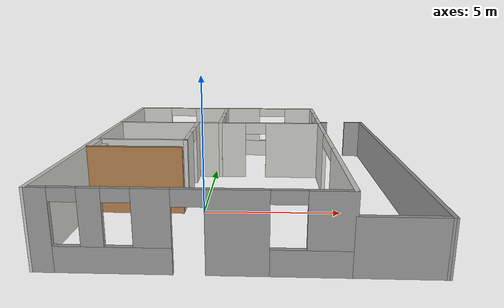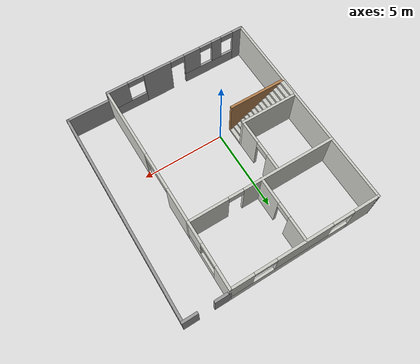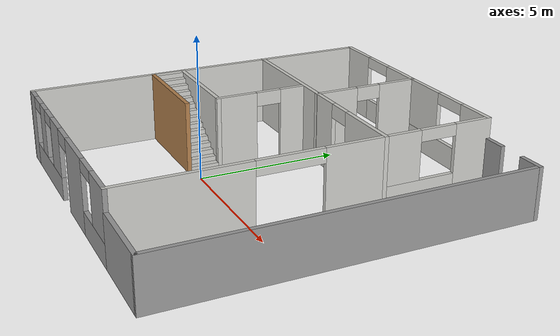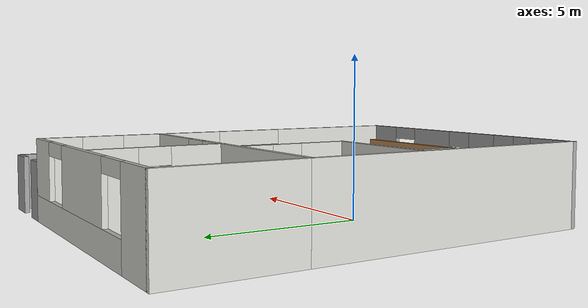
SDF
<?xml version='1.0'?>
<sdf version='1.7'>
  <model name='house'>
    <pose>1.49496 1.81694 0 0 -0 0</pose>
    <link name='Stairs_0'>
      <visual name='Stairs_0_Visual_0'>
        <pose>-2.31434 -1.37452 0.083333 0 -0 -1.5708</pose>
        <geometry>
          <box>
            <size>1 0.233333 0.166667</size>
          </box>
        </geometry>
        <material>
          <script>
            <uri>file://media/materials/scripts/gazebo.material</uri>
            <name>Gazebo/CeilingTiled</name>
          </script>
          <ambient>1 1 1 1</ambient>
        </material>
        <meta>
          <layer>0</layer>
        </meta>
      </visual>
      <collision name='Stairs_0_Collision_0'>
        <geometry>
          <box>
            <size>1 0.233333 0.166667</size>
          </box>
        </geometry>
        <pose>-2.31434 -1.37452 0.083333 0 -0 -1.5708</pose>
      </collision>
      <visual name='Stairs_0_Visual_1'>
        <pose>-2.54767 -1.37452 0.25 0 -0 -1.5708</pose>
        <geometry>
          <box>
            <size>1 0.233333 0.166667</size>
          </box>
        </geometry>
        <material>
          <script>
            <uri>file://media/materials/scripts/gazebo.material</uri>
            <name>Gazebo/CeilingTiled</name>
          </script>
          <ambient>1 1 1 1</ambient>
        </material>
        <meta>
          <layer>0</layer>
        </meta>
      </visual>
      <collision name='Stairs_0_Collision_1'>
        <geometry>
          <box>
            <size>1 0.233333 0.166667</size>
          </box>
        </geometry>
        <pose>-2.54767 -1.37452 0.25 0 -0 -1.5708</pose>
      </collision>
      <visual name='Stairs_0_Visual_2'>
        <pose>-2.781 -1.37452 0.416667 0 -0 -1.5708</pose>
        <geometry>
          <box>
            <size>1 0.233333 0.166667</size>
          </box>
        </geometry>
        <material>
          <script>
            <uri>file://media/materials/scripts/gazebo.material</uri>
            <name>Gazebo/CeilingTiled</name>
          </script>
          <ambient>1 1 1 1</ambient>
        </material>
        <meta>
          <layer>0</layer>
        </meta>
      </visual>
      <collision name='Stairs_0_Collision_2'>
        <geometry>
          <box>
            <size>1 0.233333 0.166667</size>
          </box>
        </geometry>
        <pose>-2.781 -1.37452 0.416667 0 -0 -1.5708</pose>
      </collision>
      <visual name='Stairs_0_Visual_3'>
        <pose>-3.01434 -1.37452 0.583333 0 -0 -1.5708</pose>
        <geometry>
          <box>
            <size>1 0.233333 0.166667</size>
          </box>
        </geometry>
        <material>
          <script>
            <uri>file://media/materials/scripts/gazebo.material</uri>
            <name>Gazebo/CeilingTiled</name>
          </script>
          <ambient>1 1 1 1</ambient>
        </material>
        <meta>
          <layer>0</layer>
        </meta>
      </visual>
      <collision name='Stairs_0_Collision_3'>
        <geometry>
          <box>
            <size>1 0.233333 0.166667</size>
          </box>
        </geometry>
        <pose>-3.01434 -1.37452 0.583333 0 -0 -1.5708</pose>
      </collision>
      <visual name='Stairs_0_Visual_4'>
        <pose>-3.24767 -1.37452 0.75 0 -0 -1.5708</pose>
        <geometry>
          <box>
            <size>1 0.233333 0.166667</size>
          </box>
        </geometry>
        <material>
          <script>
            <uri>file://media/materials/scripts/gazebo.material</uri>
            <name>Gazebo/CeilingTiled</name>
          </script>
          <ambient>1 1 1 1</ambient>
        </material>
        <meta>
          <layer>0</layer>
        </meta>
      </visual>
      <collision name='Stairs_0_Collision_4'>
        <geometry>
          <box>
            <size>1 0.233333 0.166667</size>
          </box>
        </geometry>
        <pose>-3.24767 -1.37452 0.75 0 -0 -1.5708</pose>
      </collision>
      <visual name='Stairs_0_Visual_5'>
        <pose>-3.48101 -1.37452 0.916667 0 -0 -1.5708</pose>
        <geometry>
          <box>
            <size>1 0.233333 0.166667</size>
          </box>
        </geometry>
        <material>
          <script>
            <uri>file://media/materials/scripts/gazebo.material</uri>
            <name>Gazebo/CeilingTiled</name>
          </script>
          <ambient>1 1 1 1</ambient>
        </material>
        <meta>
          <layer>0</layer>
        </meta>
      </visual>
      <collision name='Stairs_0_Collision_5'>
        <geometry>
          <box>
            <size>1 0.233333 0.166667</size>
          </box>
        </geometry>
        <pose>-3.48101 -1.37452 0.916667 0 -0 -1.5708</pose>
      </collision>
      <visual name='Stairs_0_Visual_6'>
        <pose>-3.71434 -1.37452 1.08333 0 -0 -1.5708</pose>
        <geometry>
          <box>
            <size>1 0.233333 0.166667</size>
          </box>
        </geometry>
        <material>
          <script>
            <uri>file://media/materials/scripts/gazebo.material</uri>
            <name>Gazebo/CeilingTiled</name>
          </script>
          <ambient>1 1 1 1</ambient>
        </material>
        <meta>
          <layer>0</layer>
        </meta>
      </visual>
      <collision name='Stairs_0_Collision_6'>
        <geometry>
          <box>
            <size>1 0.233333 0.166667</size>
          </box>
        </geometry>
        <pose>-3.71434 -1.37452 1.08333 0 -0 -1.5708</pose>
      </collision>
      <visual name='Stairs_0_Visual_7'>
        <pose>-3.94767 -1.37452 1.25 0 -0 -1.5708</pose>
        <geometry>
          <box>
            <size>1 0.233333 0.166667</size>
          </box>
        </geometry>
        <material>
          <script>
            <uri>file://media/materials/scripts/gazebo.material</uri>
            <name>Gazebo/CeilingTiled</name>
          </script>
          <ambient>1 1 1 1</ambient>
        </material>
        <meta>
          <layer>0</layer>
        </meta>
      </visual>
      <collision name='Stairs_0_Collision_7'>
        <geometry>
          <box>
            <size>1 0.233333 0.166667</size>
          </box>
        </geometry>
        <pose>-3.94767 -1.37452 1.25 0 -0 -1.5708</pose>
      </collision>
      <visual name='Stairs_0_Visual_8'>
        <pose>-4.181 -1.37452 1.41667 0 -0 -1.5708</pose>
        <geometry>
          <box>
            <size>1 0.233333 0.166667</size>
          </box>
        </geometry>
        <material>
          <script>
            <uri>file://media/materials/scripts/gazebo.material</uri>
            <name>Gazebo/CeilingTiled</name>
          </script>
          <ambient>1 1 1 1</ambient>
        </material>
        <meta>
          <layer>0</layer>
        </meta>
      </visual>
      <collision name='Stairs_0_Collision_8'>
        <geometry>
          <box>
            <size>1 0.233333 0.166667</size>
          </box>
        </geometry>
        <pose>-4.181 -1.37452 1.41667 0 -0 -1.5708</pose>
      </collision>
      <visual name='Stairs_0_Visual_9'>
        <pose>-4.41434 -1.37452 1.58333 0 -0 -1.5708</pose>
        <geometry>
          <box>
            <size>1 0.233333 0.166667</size>
          </box>
        </geometry>
        <material>
          <script>
            <uri>file://media/materials/scripts/gazebo.material</uri>
            <name>Gazebo/CeilingTiled</name>
          </script>
          <ambient>1 1 1 1</ambient>
        </material>
        <meta>
          <layer>0</layer>
        </meta>
      </visual>
      <collision name='Stairs_0_Collision_9'>
        <geometry>
          <box>
            <size>1 0.233333 0.166667</size>
          </box>
        </geometry>
        <pose>-4.41434 -1.37452 1.58333 0 -0 -1.5708</pose>
      </collision>
      <visual name='Stairs_0_Visual_10'>
        <pose>-4.64767 -1.37452 1.75 0 -0 -1.5708</pose>
        <geometry>
          <box>
            <size>1 0.233333 0.166667</size>
          </box>
        </geometry>
        <material>
          <script>
            <uri>file://media/materials/scripts/gazebo.material</uri>
            <name>Gazebo/CeilingTiled</name>
          </script>
          <ambient>1 1 1 1</ambient>
        </material>
        <meta>
          <layer>0</layer>
        </meta>
      </visual>
      <collision name='Stairs_0_Collision_10'>
        <geometry>
          <box>
            <size>1 0.233333 0.166667</size>
          </box>
        </geometry>
        <pose>-4.64767 -1.37452 1.75 0 -0 -1.5708</pose>
      </collision>
      <visual name='Stairs_0_Visual_11'>
        <pose>-4.88101 -1.37452 1.91667 0 -0 -1.5708</pose>
        <geometry>
          <box>
            <size>1 0.233333 0.166667</size>
          </box>
        </geometry>
        <material>
          <script>
            <uri>file://media/materials/scripts/gazebo.material</uri>
            <name>Gazebo/CeilingTiled</name>
          </script>
          <ambient>1 1 1 1</ambient>
        </material>
        <meta>
          <layer>0</layer>
        </meta>
      </visual>
      <collision name='Stairs_0_Collision_11'>
        <geometry>
          <box>
            <size>1 0.233333 0.166667</size>
          </box>
        </geometry>
        <pose>-4.88101 -1.37452 1.91667 0 -0 -1.5708</pose>
      </collision>
      <visual name='Stairs_0_Visual_12'>
        <pose>-5.11434 -1.37452 2.08333 0 -0 -1.5708</pose>
        <geometry>
          <box>
            <size>1 0.233333 0.166667</size>
          </box>
        </geometry>
        <material>
          <script>
            <uri>file://media/materials/scripts/gazebo.material</uri>
            <name>Gazebo/CeilingTiled</name>
          </script>
          <ambient>1 1 1 1</ambient>
        </material>
        <meta>
          <layer>0</layer>
        </meta>
      </visual>
      <collision name='Stairs_0_Collision_12'>
        <geometry>
          <box>
            <size>1 0.233333 0.166667</size>
          </box>
        </geometry>
        <pose>-5.11434 -1.37452 2.08333 0 -0 -1.5708</pose>
      </collision>
      <visual name='Stairs_0_Visual_13'>
        <pose>-5.34767 -1.37452 2.25 0 -0 -1.5708</pose>
        <geometry>
          <box>
            <size>1 0.233333 0.166667</size>
          </box>
        </geometry>
        <material>
          <script>
            <uri>file://media/materials/scripts/gazebo.material</uri>
            <name>Gazebo/CeilingTiled</name>
          </script>
          <ambient>1 1 1 1</ambient>
        </material>
        <meta>
          <layer>0</layer>
        </meta>
      </visual>
      <collision name='Stairs_0_Collision_13'>
        <geometry>
          <box>
            <size>1 0.233333 0.166667</size>
          </box>
        </geometry>
        <pose>-5.34767 -1.37452 2.25 0 -0 -1.5708</pose>
      </collision>
      <visual name='Stairs_0_Visual_14'>
        <pose>-5.58101 -1.37452 2.41667 0 -0 -1.5708</pose>
        <geometry>
          <box>
            <size>1 0.233333 0.166667</size>
          </box>
        </geometry>
        <material>
          <script>
            <uri>file://media/materials/scripts/gazebo.material</uri>
            <name>Gazebo/CeilingTiled</name>
          </script>
          <ambient>1 1 1 1</ambient>
        </material>
        <meta>
          <layer>0</layer>
        </meta>
      </visual>
      <collision name='Stairs_0_Collision_14'>
        <geometry>
          <box>
            <size>1 0.233333 0.166667</size>
          </box>
        </geometry>
        <pose>-5.58101 -1.37452 2.41667 0 -0 -1.5708</pose>
      </collision>
    </link>
    <link name='Wall_0'>
      <collision name='Wall_0_Collision'>
        <geometry>
          <box>
            <size>9 0.15 2.5</size>
          </box>
        </geometry>
        <pose>0 0 1.25 0 -0 0</pose>
      </collision>
      <visual name='Wall_0_Visual'>
        <pose>0 0 1.25 0 -0 0</pose>
        <geometry>
          <box>
            <size>9 0.15 2.5</size>
          </box>
        </geometry>
        <material>
          <script>
            <uri>file://media/materials/scripts/gazebo.material</uri>
            <name>Gazebo/CeilingTiled</name>
          </script>
          <ambient>1 1 1 1</ambient>
        </material>
        <meta>
          <layer>0</layer>
        </meta>
      </visual>
      <pose>-5.72496 -1.92194 0 0 -0 1.5708</pose>
    </link>
    <link name='Wall_13'>
      <pose>-2.28096 0.843058 0 0 -0 1.5708</pose>
      <visual name='Wall_13_Visual_0'>
        <pose>-0.973203 0 1.25 0 -0 0</pose>
        <geometry>
          <box>
            <size>1.5036 0.15 2.5</size>
          </box>
        </geometry>
        <material>
          <script>
            <uri>file://media/materials/scripts/gazebo.material</uri>
            <name>Gazebo/CeilingTiled</name>
          </script>
          <ambient>1 1 1 1</ambient>
        </material>
        <meta>
          <layer>0</layer>
        </meta>
      </visual>
      <collision name='Wall_13_Collision_0'>
        <geometry>
          <box>
            <size>1.5036 0.15 2.5</size>
          </box>
        </geometry>
        <pose>-0.973203 0 1.25 0 -0 0</pose>
      </collision>
      <visual name='Wall_13_Visual_1'>
        <pose>1.2018 0 1.25 0 -0 0</pose>
        <geometry>
          <box>
            <size>1.04641 0.15 2.5</size>
          </box>
        </geometry>
        <material>
          <script>
            <uri>file://media/materials/scripts/gazebo.material</uri>
            <name>Gazebo/CeilingTiled</name>
          </script>
          <ambient>1 1 1 1</ambient>
        </material>
        <meta>
          <layer>0</layer>
        </meta>
      </visual>
      <collision name='Wall_13_Collision_1'>
        <geometry>
          <box>
            <size>1.04641 0.15 2.5</size>
          </box>
        </geometry>
        <pose>1.2018 0 1.25 0 -0 0</pose>
      </collision>
      <visual name='Wall_13_Visual_2'>
        <pose>0.228595 0 2.25 0 -0 0</pose>
        <geometry>
          <box>
            <size>0.9 0.15 0.5</size>
          </box>
        </geometry>
        <material>
          <script>
            <uri>file://media/materials/scripts/gazebo.material</uri>
            <name>Gazebo/CeilingTiled</name>
          </script>
          <ambient>1 1 1 1</ambient>
        </material>
        <meta>
          <layer>0</layer>
        </meta>
      </visual>
      <collision name='Wall_13_Collision_2'>
        <geometry>
          <box>
            <size>0.9 0.15 0.5</size>
          </box>
        </geometry>
        <pose>0.228595 0 2.25 0 -0 0</pose>
      </collision>
    </link>
    <link name='Wall_15'>
      <collision name='Wall_15_Collision'>
        <geometry>
          <box>
            <size>4 0.15 2.5</size>
          </box>
        </geometry>
        <pose>0 0 1.25 0 -0 0</pose>
      </collision>
      <visual name='Wall_15_Visual'>
        <pose>0 0 1.25 0 -0 0</pose>
        <geometry>
          <box>
            <size>4 0.15 2.5</size>
          </box>
        </geometry>
        <material>
          <script>
            <uri>file://media/materials/scripts/gazebo.material</uri>
            <name>Gazebo/CeilingTiled</name>
          </script>
          <ambient>1 1 1 1</ambient>
        </material>
        <meta>
          <layer>0</layer>
        </meta>
      </visual>
      <pose>-5.72496 4.42806 0 0 -0 1.5708</pose>
    </link>
    <link name='Wall_16'>
      <pose>-1.29996 6.35306 0 0 -0 0</pose>
      <visual name='Wall_16_Visual_0'>
        <pose>-3.69519 0 1.25 0 -0 0</pose>
        <geometry>
          <box>
            <size>1.60962 0.15 2.5</size>
          </box>
        </geometry>
        <material>
          <script>
            <uri>file://media/materials/scripts/gazebo.material</uri>
            <name>Gazebo/CeilingTiled</name>
          </script>
          <ambient>1 1 1 1</ambient>
        </material>
        <meta>
          <layer>0</layer>
        </meta>
      </visual>
      <collision name='Wall_16_Collision_0'>
        <geometry>
          <box>
            <size>1.60962 0.15 2.5</size>
          </box>
        </geometry>
        <pose>-3.69519 0 1.25 0 -0 0</pose>
      </collision>
      <visual name='Wall_16_Visual_1'>
        <pose>0.804809 0 0.4 0 -0 0</pose>
        <geometry>
          <box>
            <size>7.39038 0.15 0.8</size>
          </box>
        </geometry>
        <material>
          <script>
            <uri>file://media/materials/scripts/gazebo.material</uri>
            <name>Gazebo/CeilingTiled</name>
          </script>
          <ambient>1 1 1 1</ambient>
        </material>
        <meta>
          <layer>0</layer>
        </meta>
      </visual>
      <collision name='Wall_16_Collision_1'>
        <geometry>
          <box>
            <size>7.39038 0.15 0.8</size>
          </box>
        </geometry>
        <pose>0.804809 0 0.4 0 -0 0</pose>
      </collision>
      <visual name='Wall_16_Visual_2'>
        <pose>0.085016 0 1.65 0 -0 0</pose>
        <geometry>
          <box>
            <size>3.3508 0.15 1.7</size>
          </box>
        </geometry>
        <material>
          <script>
            <uri>file://media/materials/scripts/gazebo.material</uri>
            <name>Gazebo/CeilingTiled</name>
          </script>
          <ambient>1 1 1 1</ambient>
        </material>
        <meta>
          <layer>0</layer>
        </meta>
      </visual>
      <collision name='Wall_16_Collision_2'>
        <geometry>
          <box>
            <size>3.3508 0.15 1.7</size>
          </box>
        </geometry>
        <pose>0.085016 0 1.65 0 -0 0</pose>
      </collision>
      <visual name='Wall_16_Visual_3'>
        <pose>3.78021 0 1.65 0 -0 0</pose>
        <geometry>
          <box>
            <size>1.43959 0.15 1.7</size>
          </box>
        </geometry>
        <material>
          <script>
            <uri>file://media/materials/scripts/gazebo.material</uri>
            <name>Gazebo/CeilingTiled</name>
          </script>
          <ambient>1 1 1 1</ambient>
        </material>
        <meta>
          <layer>0</layer>
        </meta>
      </visual>
      <collision name='Wall_16_Collision_3'>
        <geometry>
          <box>
            <size>1.43959 0.15 1.7</size>
          </box>
        </geometry>
        <pose>3.78021 0 1.65 0 -0 0</pose>
      </collision>
      <visual name='Wall_16_Visual_4'>
        <pose>-2.24038 0 2.3 0 -0 0</pose>
        <geometry>
          <box>
            <size>1.3 0.15 0.4</size>
          </box>
        </geometry>
        <material>
          <script>
            <uri>file://media/materials/scripts/gazebo.material</uri>
            <name>Gazebo/CeilingTiled</name>
          </script>
          <ambient>1 1 1 1</ambient>
        </material>
        <meta>
          <layer>0</layer>
        </meta>
      </visual>
      <collision name='Wall_16_Collision_4'>
        <geometry>
          <box>
            <size>1.3 0.15 0.4</size>
          </box>
        </geometry>
        <pose>-2.24038 0 2.3 0 -0 0</pose>
      </collision>
      <visual name='Wall_16_Visual_5'>
        <pose>2.41041 0 2.3 0 -0 0</pose>
        <geometry>
          <box>
            <size>1.3 0.15 0.4</size>
          </box>
        </geometry>
        <material>
          <script>
            <uri>file://media/materials/scripts/gazebo.material</uri>
            <name>Gazebo/CeilingTiled</name>
          </script>
          <ambient>1 1 1 1</ambient>
        </material>
        <meta>
          <layer>0</layer>
        </meta>
      </visual>
      <collision name='Wall_16_Collision_5'>
        <geometry>
          <box>
            <size>1.3 0.15 0.4</size>
          </box>
        </geometry>
        <pose>2.41041 0 2.3 0 -0 0</pose>
      </collision>
    </link>
    <link name='Wall_17'>
      <pose>3.12504 4.42806 0 0 -0 -1.5708</pose>
      <visual name='Wall_17_Visual_0'>
        <pose>-1.32407 0 1.25 0 -0 0</pose>
        <geometry>
          <box>
            <size>1.35186 0.15 2.5</size>
          </box>
        </geometry>
        <material>
          <script>
            <uri>file://media/materials/scripts/gazebo.material</uri>
            <name>Gazebo/CeilingTiled</name>
          </script>
          <ambient>1 1 1 1</ambient>
        </material>
        <meta>
          <layer>0</layer>
        </meta>
      </visual>
      <collision name='Wall_17_Collision_0'>
        <geometry>
          <box>
            <size>1.35186 0.15 2.5</size>
          </box>
        </geometry>
        <pose>-1.32407 0 1.25 0 -0 0</pose>
      </collision>
      <visual name='Wall_17_Visual_1'>
        <pose>0.675929 0 0.4 0 -0 0</pose>
        <geometry>
          <box>
            <size>2.64814 0.15 0.8</size>
          </box>
        </geometry>
        <material>
          <script>
            <uri>file://media/materials/scripts/gazebo.material</uri>
            <name>Gazebo/CeilingTiled</name>
          </script>
          <ambient>1 1 1 1</ambient>
        </material>
        <meta>
          <layer>0</layer>
        </meta>
      </visual>
      <collision name='Wall_17_Collision_1'>
        <geometry>
          <box>
            <size>2.64814 0.15 0.8</size>
          </box>
        </geometry>
        <pose>0.675929 0 0.4 0 -0 0</pose>
      </collision>
      <visual name='Wall_17_Visual_2'>
        <pose>1.32593 0 1.65 0 -0 0</pose>
        <geometry>
          <box>
            <size>1.34814 0.15 1.7</size>
          </box>
        </geometry>
        <material>
          <script>
            <uri>file://media/materials/scripts/gazebo.material</uri>
            <name>Gazebo/CeilingTiled</name>
          </script>
          <ambient>1 1 1 1</ambient>
        </material>
        <meta>
          <layer>0</layer>
        </meta>
      </visual>
      <collision name='Wall_17_Collision_2'>
        <geometry>
          <box>
            <size>1.34814 0.15 1.7</size>
          </box>
        </geometry>
        <pose>1.32593 0 1.65 0 -0 0</pose>
      </collision>
      <visual name='Wall_17_Visual_3'>
        <pose>0.001858 0 2.3 0 -0 0</pose>
        <geometry>
          <box>
            <size>1.3 0.15 0.4</size>
          </box>
        </geometry>
        <material>
          <script>
            <uri>file://media/materials/scripts/gazebo.material</uri>
            <name>Gazebo/CeilingTiled</name>
          </script>
          <ambient>1 1 1 1</ambient>
        </material>
        <meta>
          <layer>0</layer>
        </meta>
      </visual>
      <collision name='Wall_17_Collision_3'>
        <geometry>
          <box>
            <size>1.3 0.15 0.4</size>
          </box>
        </geometry>
        <pose>0.001858 0 2.3 0 -0 0</pose>
      </collision>
    </link>
    <link name='Wall_2'>
      <pose>-1.29996 -6.34794 0 0 -0 -0.000226</pose>
      <visual name='Wall_2_Visual_0'>
        <pose>-4.14753 0 1.25 0 -0 0</pose>
        <geometry>
          <box>
            <size>0.705065 0.15 2.5</size>
          </box>
        </geometry>
        <material>
          <script>
            <uri>file://media/materials/scripts/gazebo.material</uri>
            <name>Gazebo/Grey</name>
          </script>
          <ambient>1 1 1 1</ambient>
        </material>
        <meta>
          <layer>0</layer>
        </meta>
      </visual>
      <collision name='Wall_2_Collision_0'>
        <geometry>
          <box>
            <size>0.705065 0.15 2.5</size>
          </box>
        </geometry>
        <pose>-4.14753 0 1.25 0 -0 0</pose>
      </collision>
      <visual name='Wall_2_Visual_1'>
        <pose>1.29235 0 1.25 0 -0 0</pose>
        <geometry>
          <box>
            <size>1.75469 0.15 2.5</size>
          </box>
        </geometry>
        <material>
          <script>
            <uri>file://media/materials/scripts/gazebo.material</uri>
            <name>Gazebo/Grey</name>
          </script>
          <ambient>1 1 1 1</ambient>
        </material>
        <meta>
          <layer>0</layer>
        </meta>
      </visual>
      <collision name='Wall_2_Collision_1'>
        <geometry>
          <box>
            <size>1.75469 0.15 2.5</size>
          </box>
        </geometry>
        <pose>1.29235 0 1.25 0 -0 0</pose>
      </collision>
      <visual name='Wall_2_Visual_2'>
        <pose>-2.14 0 0.4 0 -0 0</pose>
        <geometry>
          <box>
            <size>3.31 0.15 0.8</size>
          </box>
        </geometry>
        <material>
          <script>
            <uri>file://media/materials/scripts/gazebo.material</uri>
            <name>Gazebo/Grey</name>
          </script>
          <ambient>1 1 1 1</ambient>
        </material>
        <meta>
          <layer>0</layer>
        </meta>
      </visual>
      <collision name='Wall_2_Collision_2'>
        <geometry>
          <box>
            <size>3.31 0.15 0.8</size>
          </box>
        </geometry>
        <pose>-2.14 0 0.4 0 -0 0</pose>
      </collision>
      <visual name='Wall_2_Visual_3'>
        <pose>3.33488 0 0.4 0 -0 0</pose>
        <geometry>
          <box>
            <size>2.33037 0.15 0.8</size>
          </box>
        </geometry>
        <material>
          <script>
            <uri>file://media/materials/scripts/gazebo.material</uri>
            <name>Gazebo/Grey</name>
          </script>
          <ambient>1 1 1 1</ambient>
        </material>
        <meta>
          <layer>0</layer>
        </meta>
      </visual>
      <collision name='Wall_2_Collision_3'>
        <geometry>
          <box>
            <size>2.33037 0.15 0.8</size>
          </box>
        </geometry>
        <pose>3.33488 0 0.4 0 -0 0</pose>
      </collision>
      <visual name='Wall_2_Visual_4'>
        <pose>-2.67 0 1.65 0 -0 0</pose>
        <geometry>
          <box>
            <size>0.65 0.15 1.7</size>
          </box>
        </geometry>
        <material>
          <script>
            <uri>file://media/materials/scripts/gazebo.material</uri>
            <name>Gazebo/Grey</name>
          </script>
          <ambient>1 1 1 1</ambient>
        </material>
        <meta>
          <layer>0</layer>
        </meta>
      </visual>
      <collision name='Wall_2_Collision_4'>
        <geometry>
          <box>
            <size>0.65 0.15 1.7</size>
          </box>
        </geometry>
        <pose>-2.67 0 1.65 0 -0 0</pose>
      </collision>
      <visual name='Wall_2_Visual_5'>
        <pose>-1.015 0 1.65 0 -0 0</pose>
        <geometry>
          <box>
            <size>1.06 0.15 1.7</size>
          </box>
        </geometry>
        <material>
          <script>
            <uri>file://media/materials/scripts/gazebo.material</uri>
            <name>Gazebo/Grey</name>
          </script>
          <ambient>1 1 1 1</ambient>
        </material>
        <meta>
          <layer>0</layer>
        </meta>
      </visual>
      <collision name='Wall_2_Collision_5'>
        <geometry>
          <box>
            <size>1.06 0.15 1.7</size>
          </box>
        </geometry>
        <pose>-1.015 0 1.65 0 -0 0</pose>
      </collision>
      <visual name='Wall_2_Visual_6'>
        <pose>-1.015 0 1.65 0 -0 0</pose>
        <geometry>
          <box>
            <size>1.06 0.15 1.7</size>
          </box>
        </geometry>
        <material>
          <script>
            <uri>file://media/materials/scripts/gazebo.material</uri>
            <name>Gazebo/Grey</name>
          </script>
          <ambient>1 1 1 1</ambient>
        </material>
        <meta>
          <layer>0</layer>
        </meta>
      </visual>
      <collision name='Wall_2_Collision_6'>
        <geometry>
          <box>
            <size>1.06 0.15 1.7</size>
          </box>
        </geometry>
        <pose>-1.015 0 1.65 0 -0 0</pose>
      </collision>
      <visual name='Wall_2_Visual_7'>
        <pose>3.83488 0 1.65 0 -0 0</pose>
        <geometry>
          <box>
            <size>1.33037 0.15 1.7</size>
          </box>
        </geometry>
        <material>
          <script>
            <uri>file://media/materials/scripts/gazebo.material</uri>
            <name>Gazebo/Grey</name>
          </script>
          <ambient>1 1 1 1</ambient>
        </material>
        <meta>
          <layer>0</layer>
        </meta>
      </visual>
      <collision name='Wall_2_Collision_7'>
        <geometry>
          <box>
            <size>1.33037 0.15 1.7</size>
          </box>
        </geometry>
        <pose>3.83488 0 1.65 0 -0 0</pose>
      </collision>
      <visual name='Wall_2_Visual_8'>
        <pose>-0.035 0 2.25 0 -0 0</pose>
        <geometry>
          <box>
            <size>0.9 0.15 0.5</size>
          </box>
        </geometry>
        <material>
          <script>
            <uri>file://media/materials/scripts/gazebo.material</uri>
            <name>Gazebo/Grey</name>
          </script>
          <ambient>1 1 1 1</ambient>
        </material>
        <meta>
          <layer>0</layer>
        </meta>
      </visual>
      <collision name='Wall_2_Collision_8'>
        <geometry>
          <box>
            <size>0.9 0.15 0.5</size>
          </box>
        </geometry>
        <pose>-0.035 0 2.25 0 -0 0</pose>
      </collision>
      <visual name='Wall_2_Visual_9'>
        <pose>-0.035 0 2.25 0 -0 0</pose>
        <geometry>
          <box>
            <size>0.9 0.15 0.5</size>
          </box>
        </geometry>
        <material>
          <script>
            <uri>file://media/materials/scripts/gazebo.material</uri>
            <name>Gazebo/Grey</name>
          </script>
          <ambient>1 1 1 1</ambient>
        </material>
        <meta>
          <layer>0</layer>
        </meta>
      </visual>
      <collision name='Wall_2_Collision_9'>
        <geometry>
          <box>
            <size>0.9 0.15 0.5</size>
          </box>
        </geometry>
        <pose>-0.035 0 2.25 0 -0 0</pose>
      </collision>
      <visual name='Wall_2_Visual_10'>
        <pose>-3.395 0 2.3 0 -0 0</pose>
        <geometry>
          <box>
            <size>0.8 0.15 0.4</size>
          </box>
        </geometry>
        <material>
          <script>
            <uri>file://media/materials/scripts/gazebo.material</uri>
            <name>Gazebo/Grey</name>
          </script>
          <ambient>1 1 1 1</ambient>
        </material>
        <meta>
          <layer>0</layer>
        </meta>
      </visual>
      <collision name='Wall_2_Collision_10'>
        <geometry>
          <box>
            <size>0.8 0.15 0.4</size>
          </box>
        </geometry>
        <pose>-3.395 0 2.3 0 -0 0</pose>
      </collision>
      <visual name='Wall_2_Visual_11'>
        <pose>2.66969 0 2.3 0 -0 0</pose>
        <geometry>
          <box>
            <size>1 0.15 0.4</size>
          </box>
        </geometry>
        <material>
          <script>
            <uri>file://media/materials/scripts/gazebo.material</uri>
            <name>Gazebo/Grey</name>
          </script>
          <ambient>1 1 1 1</ambient>
        </material>
        <meta>
          <layer>0</layer>
        </meta>
      </visual>
      <collision name='Wall_2_Collision_11'>
        <geometry>
          <box>
            <size>1 0.15 0.4</size>
          </box>
        </geometry>
        <pose>2.66969 0 2.3 0 -0 0</pose>
      </collision>
      <visual name='Wall_2_Visual_12'>
        <pose>-1.945 0 2.3 0 -0 0</pose>
        <geometry>
          <box>
            <size>0.8 0.15 0.4</size>
          </box>
        </geometry>
        <material>
          <script>
            <uri>file://media/materials/scripts/gazebo.material</uri>
            <name>Gazebo/Grey</name>
          </script>
          <ambient>1 1 1 1</ambient>
        </material>
        <meta>
          <layer>0</layer>
        </meta>
      </visual>
      <collision name='Wall_2_Collision_12'>
        <geometry>
          <box>
            <size>0.8 0.15 0.4</size>
          </box>
        </geometry>
        <pose>-1.945 0 2.3 0 -0 0</pose>
      </collision>
    </link>
    <link name='Wall_21'>
      <pose>-1.26296 4.41081 0 0 -0 1.5708</pose>
      <visual name='Wall_21_Visual_0'>
        <pose>-1.18981 0 1.25 0 -0 0</pose>
        <geometry>
          <box>
            <size>1.62038 0.15 2.5</size>
          </box>
        </geometry>
        <material>
          <script>
            <uri>file://media/materials/scripts/gazebo.material</uri>
            <name>Gazebo/CeilingTiled</name>
          </script>
          <ambient>1 1 1 1</ambient>
        </material>
        <meta>
          <layer>0</layer>
        </meta>
      </visual>
      <collision name='Wall_21_Collision_0'>
        <geometry>
          <box>
            <size>1.62038 0.15 2.5</size>
          </box>
        </geometry>
        <pose>-1.18981 0 1.25 0 -0 0</pose>
      </collision>
      <visual name='Wall_21_Visual_1'>
        <pose>1.26019 0 1.25 0 -0 0</pose>
        <geometry>
          <box>
            <size>1.47962 0.15 2.5</size>
          </box>
        </geometry>
        <material>
          <script>
            <uri>file://media/materials/scripts/gazebo.material</uri>
            <name>Gazebo/CeilingTiled</name>
          </script>
          <ambient>1 1 1 1</ambient>
        </material>
        <meta>
          <layer>0</layer>
        </meta>
      </visual>
      <collision name='Wall_21_Collision_1'>
        <geometry>
          <box>
            <size>1.47962 0.15 2.5</size>
          </box>
        </geometry>
        <pose>1.26019 0 1.25 0 -0 0</pose>
      </collision>
      <visual name='Wall_21_Visual_2'>
        <pose>0.070376 0 2.25 0 -0 0</pose>
        <geometry>
          <box>
            <size>0.9 0.15 0.5</size>
          </box>
        </geometry>
        <material>
          <script>
            <uri>file://media/materials/scripts/gazebo.material</uri>
            <name>Gazebo/CeilingTiled</name>
          </script>
          <ambient>1 1 1 1</ambient>
        </material>
        <meta>
          <layer>0</layer>
        </meta>
      </visual>
      <collision name='Wall_21_Collision_2'>
        <geometry>
          <box>
            <size>0.9 0.15 0.5</size>
          </box>
        </geometry>
        <pose>0.070376 0 2.25 0 -0 0</pose>
      </collision>
    </link>
    <link name='Wall_26'>
      <collision name='Wall_26_Collision'>
        <geometry>
          <box>
            <size>12.85 0.15 1.8</size>
          </box>
        </geometry>
        <pose>0 0 0.9 0 -0 0</pose>
      </collision>
      <visual name='Wall_26_Visual'>
        <pose>0 0 0.9 0 -0 0</pose>
        <geometry>
          <box>
            <size>12.85 0.15 1.8</size>
          </box>
        </geometry>
        <material>
          <script>
            <uri>file://media/materials/scripts/gazebo.material</uri>
            <name>Gazebo/Grey</name>
          </script>
          <ambient>1 1 1 1</ambient>
        </material>
        <meta>
          <layer>0</layer>
        </meta>
      </visual>
      <pose>5.72383 -0.002942 0 0 -0 1.57083</pose>
    </link>
    <link name='Wall_3'>
      <pose>3.12504 -1.92294 0 0 -0 1.5708</pose>
      <visual name='Wall_3_Visual_0'>
        <pose>-2.23338 0 1.25 0 -0 0</pose>
        <geometry>
          <box>
            <size>4.53502 0.15 2.5</size>
          </box>
        </geometry>
        <material>
          <script>
            <uri>file://media/materials/scripts/gazebo.material</uri>
            <name>Gazebo/CeilingTiled</name>
          </script>
          <ambient>1 1 1 1</ambient>
        </material>
        <meta>
          <layer>0</layer>
        </meta>
      </visual>
      <collision name='Wall_3_Collision_0'>
        <geometry>
          <box>
            <size>4.53502 0.15 2.5</size>
          </box>
        </geometry>
        <pose>-2.23338 0 1.25 0 -0 0</pose>
      </collision>
      <visual name='Wall_3_Visual_1'>
        <pose>3.41751 0 1.25 0 -0 0</pose>
        <geometry>
          <box>
            <size>2.16676 0.15 2.5</size>
          </box>
        </geometry>
        <material>
          <script>
            <uri>file://media/materials/scripts/gazebo.material</uri>
            <name>Gazebo/CeilingTiled</name>
          </script>
          <ambient>1 1 1 1</ambient>
        </material>
        <meta>
          <layer>0</layer>
        </meta>
      </visual>
      <collision name='Wall_3_Collision_1'>
        <geometry>
          <box>
            <size>2.16676 0.15 2.5</size>
          </box>
        </geometry>
        <pose>3.41751 0 1.25 0 -0 0</pose>
      </collision>
      <visual name='Wall_3_Visual_2'>
        <pose>1.18413 0 2.25 0 -0 0</pose>
        <geometry>
          <box>
            <size>2.3 0.15 0.5</size>
          </box>
        </geometry>
        <material>
          <script>
            <uri>file://media/materials/scripts/gazebo.material</uri>
            <name>Gazebo/CeilingTiled</name>
          </script>
          <ambient>1 1 1 1</ambient>
        </material>
        <meta>
          <layer>0</layer>
        </meta>
      </visual>
      <collision name='Wall_3_Collision_2'>
        <geometry>
          <box>
            <size>2.3 0.15 0.5</size>
          </box>
        </geometry>
        <pose>1.18413 0 2.25 0 -0 0</pose>
      </collision>
    </link>
    <link name='Wall_32'>
      <pose>4.42504 6.35306 0 0 -0 0</pose>
      <visual name='Wall_32_Visual_0'>
        <pose>-0.908961 0 0.9 0 -0 0</pose>
        <geometry>
          <box>
            <size>0.932078 0.15 1.8</size>
          </box>
        </geometry>
        <material>
          <script>
            <uri>file://media/materials/scripts/gazebo.material</uri>
            <name>Gazebo/Grey</name>
          </script>
          <ambient>1 1 1 1</ambient>
        </material>
        <meta>
          <layer>0</layer>
        </meta>
      </visual>
      <collision name='Wall_32_Collision_0'>
        <geometry>
          <box>
            <size>0.932078 0.15 1.8</size>
          </box>
        </geometry>
        <pose>-0.908961 0 0.9 0 -0 0</pose>
      </collision>
      <visual name='Wall_32_Visual_1'>
        <pose>0.916039 0 0.9 0 -0 0</pose>
        <geometry>
          <box>
            <size>0.917922 0.15 1.8</size>
          </box>
        </geometry>
        <material>
          <script>
            <uri>file://media/materials/scripts/gazebo.material</uri>
            <name>Gazebo/Grey</name>
          </script>
          <ambient>1 1 1 1</ambient>
        </material>
        <meta>
          <layer>0</layer>
        </meta>
      </visual>
      <collision name='Wall_32_Collision_1'>
        <geometry>
          <box>
            <size>0.917922 0.15 1.8</size>
          </box>
        </geometry>
        <pose>0.916039 0 0.9 0 -0 0</pose>
      </collision>
    </link>
    <link name='Wall_34'>
      <collision name='Wall_34_Collision'>
        <geometry>
          <box>
            <size>2.74859 0.15 1.8</size>
          </box>
        </geometry>
        <pose>0 0 0.9 0 -0 0</pose>
      </collision>
      <visual name='Wall_34_Visual'>
        <pose>0 0 0.9 0 -0 0</pose>
        <geometry>
          <box>
            <size>2.74859 0.15 1.8</size>
          </box>
        </geometry>
        <material>
          <script>
            <uri>file://media/materials/scripts/gazebo.material</uri>
            <name>Gazebo/Grey</name>
          </script>
          <ambient>1 1 1 1</ambient>
        </material>
        <meta>
          <layer>0</layer>
        </meta>
      </visual>
      <pose>4.42454 -6.35094 0 0 -0 -0.001539</pose>
    </link>
    <link name='Wall_5'>
      <pose>-1.29996 2.50306 0 0 -0 0</pose>
      <visual name='Wall_5_Visual_0'>
        <pose>-1.66765 0 1.25 0 -0 0</pose>
        <geometry>
          <box>
            <size>5.6647 0.15 2.5</size>
          </box>
        </geometry>
        <material>
          <script>
            <uri>file://media/materials/scripts/gazebo.material</uri>
            <name>Gazebo/CeilingTiled</name>
          </script>
          <ambient>1 1 1 1</ambient>
        </material>
        <meta>
          <layer>0</layer>
        </meta>
      </visual>
      <collision name='Wall_5_Collision_0'>
        <geometry>
          <box>
            <size>5.6647 0.15 2.5</size>
          </box>
        </geometry>
        <pose>-1.66765 0 1.25 0 -0 0</pose>
      </collision>
      <visual name='Wall_5_Visual_1'>
        <pose>3.28235 0 1.25 0 -0 0</pose>
        <geometry>
          <box>
            <size>2.4353 0.15 2.5</size>
          </box>
        </geometry>
        <material>
          <script>
            <uri>file://media/materials/scripts/gazebo.material</uri>
            <name>Gazebo/CeilingTiled</name>
          </script>
          <ambient>1 1 1 1</ambient>
        </material>
        <meta>
          <layer>0</layer>
        </meta>
      </visual>
      <collision name='Wall_5_Collision_1'>
        <geometry>
          <box>
            <size>2.4353 0.15 2.5</size>
          </box>
        </geometry>
        <pose>3.28235 0 1.25 0 -0 0</pose>
      </collision>
      <visual name='Wall_5_Visual_2'>
        <pose>1.6147 0 2.25 0 -0 0</pose>
        <geometry>
          <box>
            <size>0.9 0.15 0.5</size>
          </box>
        </geometry>
        <material>
          <script>
            <uri>file://media/materials/scripts/gazebo.material</uri>
            <name>Gazebo/CeilingTiled</name>
          </script>
          <ambient>1 1 1 1</ambient>
        </material>
        <meta>
          <layer>0</layer>
        </meta>
      </visual>
      <collision name='Wall_5_Collision_2'>
        <geometry>
          <box>
            <size>0.9 0.15 0.5</size>
          </box>
        </geometry>
        <pose>1.6147 0 2.25 0 -0 0</pose>
      </collision>
    </link>
    <link name='Wall_7'>
      <collision name='Wall_7_Collision'>
        <geometry>
          <box>
            <size>3.5 0.15 2.5</size>
          </box>
        </geometry>
        <pose>0 0 1.25 0 -0 0</pose>
      </collision>
      <visual name='Wall_7_Visual'>
        <pose>0 0 1.25 0 -0 0</pose>
        <geometry>
          <box>
            <size>3.5 0.15 2.5</size>
          </box>
        </geometry>
        <material>
          <script>
            <uri>file://media/materials/scripts/gazebo.material</uri>
            <name>Gazebo/Wood</name>
          </script>
          <ambient>1 1 1 1</ambient>
        </material>
        <meta>
          <layer>0</layer>
        </meta>
      </visual>
      <pose>-3.95564 -1.94204 0 0 -0 0</pose>
    </link>
    <link name='Wall_9'>
      <collision name='Wall_9_Collision'>
        <geometry>
          <box>
            <size>3.5 0.15 2.5</size>
          </box>
        </geometry>
        <pose>0 0 1.25 0 -0 0</pose>
      </collision>
      <visual name='Wall_9_Visual'>
        <pose>0 0 1.25 0 -0 0</pose>
        <geometry>
          <box>
            <size>3.5 0.15 2.5</size>
          </box>
        </geometry>
        <material>
          <script>
            <uri>file://media/materials/scripts/gazebo.material</uri>
            <name>Gazebo/CeilingTiled</name>
          </script>
          <ambient>1 1 1 1</ambient>
        </material>
        <meta>
          <layer>0</layer>
        </meta>
      </visual>
      <pose>-3.9558 -0.806976 0 0 -0 2e-05</pose>
    </link>
    <static>1</static>
  </model>
</sdf>
